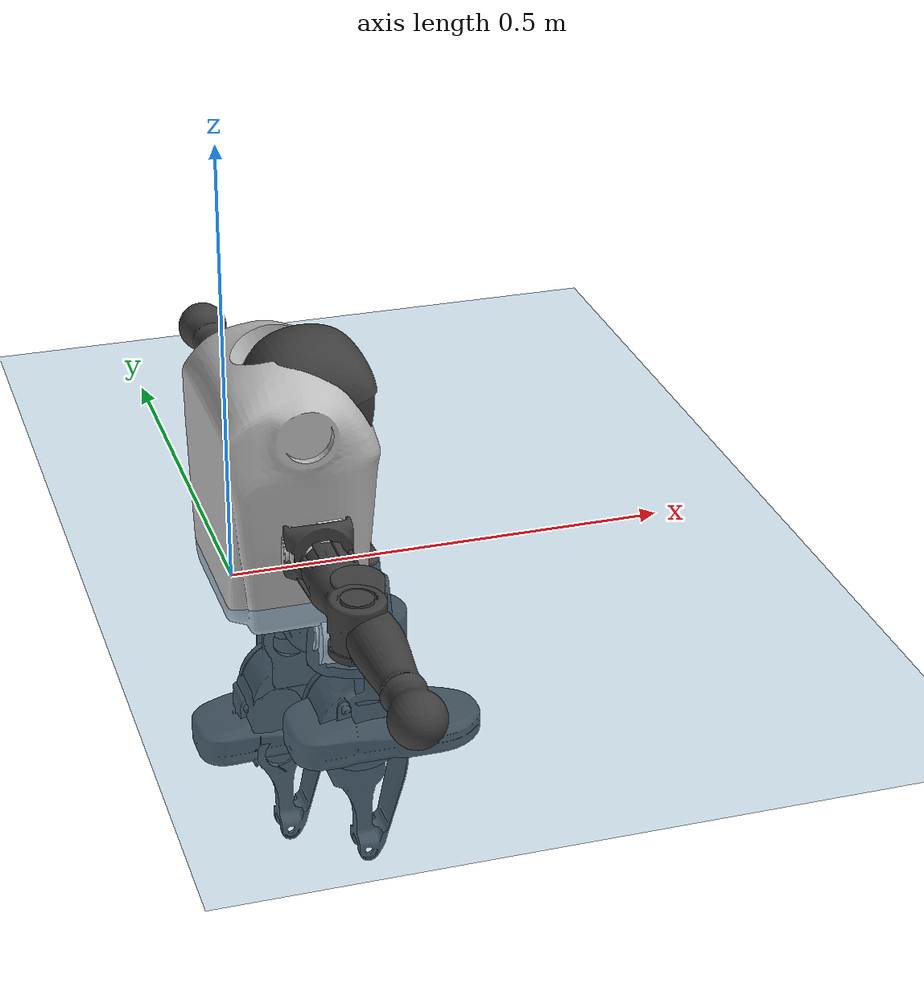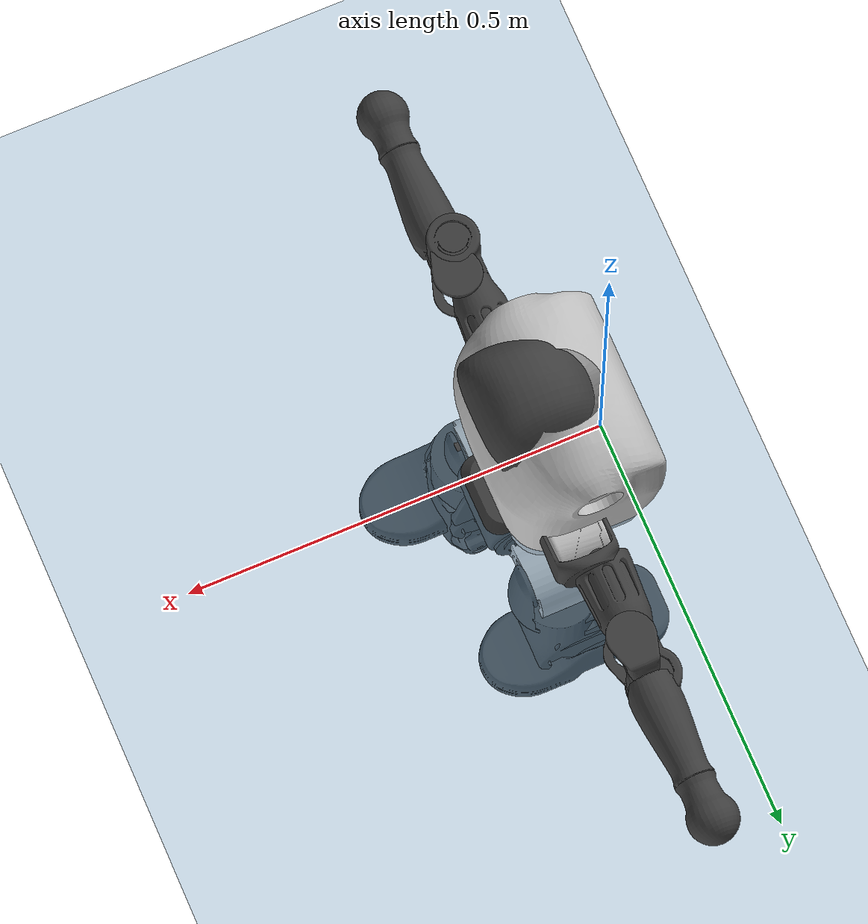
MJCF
<mujoco model="T1">
  <compiler angle="radian" assetdir="assets" balanceinertia="true" inertiafromgeom="false"/>

  <option timestep="0.005" density="1.2" viscosity="2e-05"/>

  <size nkey="1"/>

  <visual>
    <quality shadowsize="8192"/>
    <map shadowclip="0.5"/>
  </visual>

  <default>
    <default class="/">
      <joint armature="0.01" damping="0.01" frictionloss="0.1"/>
      <geom contype="0" conaffinity="0" group="1" solref="-1000 -80"/>
      <site size="0.01 0.005 0.005" group="5"/>
      <general forcelimited="true" biastype="affine" gainprm="25" biasprm="0 -25 -0.6"/>
      <default class="t1">
        <geom rgba="0.25 0.25 0.25 1"/>
        <default class="visual">
          <geom type="mesh" group="2"/>
        </default>
        <default class="collision">
          <geom group="3"/>
        </default>
        <default class="foot">
          <geom size="0.1115 0.05 0.015" type="box" condim="6" group="4" priority="1" solimp="0.015 1 0.015"/>
        </default>
        <default class="reward_collision_sphere">
          <geom group="5" rgba="1 0 0 1"/>
        </default>
      </default>
    </default>
  </default>

  <asset>
    <texture type="skybox" colorspace="auto" name="//unnamed_texture_0" builtin="gradient" rgb1="0.95 0.95 0.95" rgb2="0.95 0.95 0.95" width="100" height="600"/>
    <texture type="2d" colorspace="auto" name="texplane" builtin="checker" rgb1="0.345 0.575 0.748" rgb2="0.345 0.575 0.748" markrgb="1 1 1" width="512" height="512"/>
    <material name="MatPlane" class="/" texture="texplane" texuniform="true" texrepeat="2 2" specular="0.9"/>
    <mesh name="Trunk" class="/" file="Trunk.stl"/>
    <mesh name="H1" class="/" file="H1.stl"/>
    <mesh name="H2" class="/" file="H2.stl"/>
    <mesh name="AL1" class="/" file="AL1.stl"/>
    <mesh name="AL2" class="/" file="AL2.stl"/>
    <mesh name="AL3" class="/" file="AL3.stl"/>
    <mesh name="left_hand_link" class="/" file="left_hand_link.stl"/>
    <mesh name="AR1" class="/" file="AR1.stl"/>
    <mesh name="AR2" class="/" file="AR2.stl"/>
    <mesh name="AR3" class="/" file="AR3.stl"/>
    <mesh name="right_hand_link" class="/" file="right_hand_link.stl"/>
    <mesh name="Waist" class="/" file="Waist.stl"/>
    <mesh name="Hip_Pitch_Left" class="/" file="Hip_Pitch_Left.stl"/>
    <mesh name="Hip_Roll_Left" class="/" file="Hip_Roll_Left.stl"/>
    <mesh name="Hip_Yaw_Left" class="/" file="Hip_Yaw_Left.stl"/>
    <mesh name="Shank_Left" class="/" file="Shank_Left.stl"/>
    <mesh name="Ankle_Cross_Left" class="/" file="Ankle_Cross_Left.stl"/>
    <mesh name="left_foot_link" class="/" file="left_foot_link.stl"/>
    <mesh name="Hip_Pitch_Right" class="/" file="Hip_Pitch_Right.stl"/>
    <mesh name="Hip_Roll_Right" class="/" file="Hip_Roll_Right.stl"/>
    <mesh name="Hip_Yaw_Right" class="/" file="Hip_Yaw_Right.stl"/>
    <mesh name="Shank_Right" class="/" file="Shank_Right.stl"/>
    <mesh name="Ankle_Cross_Right" class="/" file="Ankle_Cross_Right.stl"/>
    <mesh name="right_foot_link" class="/" file="right_foot_link.stl"/>
  </asset>

  <worldbody>
    <geom name="floor" class="/" size="100 100 0.125" type="plane" group="0" material="MatPlane"/>
    <light name="toplight_shadow" class="/" pos="0 0 5" dir="0.0990148 0.0990148 -0.990148" type="directional" ambient="0.04 0.04 0.04" diffuse="0.55 0.55 0.55" specular="0.12 0.12 0.12"/>
    <light name="toplight_fill" class="/" pos="0 0 5" dir="0.0990148 0.0990148 -0.990148" type="directional" castshadow="false" ambient="0.04 0.04 0.04" diffuse="0.3 0.3 0.3" specular="0.08 0.08 0.08"/>
    <body name="trunk" childclass="t1" pos="0.00864048 0.0146151 -0.0129063" quat="0.999972 -0.00687889 -0.00304471 0.000230726">
      <inertial pos="0.07197 -0.00765542 0.0279679" quat="0.999959 0.00293628 -0.0079736 -0.00319973" mass="5.35181" diaginertia="0.234517 0.0124606 0.000172558"/>
      <joint name="//unnamed_joint_0" type="free" armature="0" damping="0" frictionloss="0"/>
      <geom name="//unnamed_geom_1" class="visual" rgba="0.76 0.76 0.76 1" mesh="Trunk"/>
      <geom name="//unnamed_geom_2" class="collision" size="0.0587431 0.0783241 0.117486" pos="0.0777598 0 0.0414655" type="box"/>
      <geom name="//unnamed_geom_3" class="reward_collision_sphere" size="0.0900727" pos="0.0777598 0 0.0345545"/>
      <geom name="//unnamed_geom_4" class="reward_collision_sphere" size="0.0117486" pos="0.0777598 0.0601954 0"/>
      <geom name="//unnamed_geom_5" class="reward_collision_sphere" size="0.0117486" pos="0.0777598 -0.0601954 0"/>
      <geom name="//unnamed_geom_6" class="reward_collision_sphere" size="0.0117486" pos="0.0777598 0.0757753 0.0621982"/>
      <geom name="//unnamed_geom_7" class="reward_collision_sphere" size="0.0117486" pos="0.0777598 -0.0757753 0.0621982"/>
      <site name="imu" pos="-0.0645402 0.0352486 -0.0340077" size="0.00783241"/>
      <camera name="track" pos="0 -1.41636 0" quat="0.707107 0.707107 0 0" mode="trackcom"/>
      <camera name="ego_camera" pos="0.158112 0 0.145129" quat="-0.5 -0.5 0.5 0.5"/>
      <body name="H1" pos="0.0659401 -0.0151894 0.0967253" quat="1 0.000160666 0.000266515 3.49517e-05">
        <inertial pos="0.0128683 -0.00996309 0.00682533" quat="0.804087 -0.060573 -0.0303455 0.590638" mass="0.257758" diaginertia="0.00094241 3.83011e-05 8.35347e-07"/>
        <joint name="AAHead_yaw" pos="0 0 0" axis="-0.0157617 -0.0246405 0.999572" range="-1.38733 1.84083" armature="0.0137322" damping="0.0290582" frictionloss="0.00879558"/>
        <geom name="//unnamed_geom_8" class="visual" mesh="H1"/>
        <body name="H2" pos="0.00337183 -0.000458696 0.00991209" quat="1 -0.000344407 0.000153407 -0.000236482">
          <inertial pos="0.003639 0.00235289 0.0344121" quat="0.985413 0.144944 -0.054164 -0.0708398" mass="0.376233" diaginertia="0.00987538 0.000360578 8.03598e-06"/>
          <joint name="Head_pitch" pos="0 0 0" axis="-0.000652414 -0.999701 0.0244309" range="-1.15461 0.274912" armature="0.0148275" damping="0.0108924" frictionloss="0.10516"/>
          <geom name="//unnamed_geom_9" class="visual" mesh="H2"/>
          <geom name="//unnamed_geom_10" class="collision" size="0.0626593" pos="0.01296 0 0.03801"/>
          <geom name="//unnamed_geom_11" class="reward_collision_sphere" size="0.0704917" pos="0.0259199 0 0.0345545"/>
        </body>
      </body>
      <body name="AL1" pos="0.079478 0.0699967 0.0821104" quat="1 -0.0002088 0.000533418 0.000489969">
        <inertial pos="0.0095134 0.0323065 -0.00647249" quat="0.481974 0.567686 -0.482161 0.46147" mass="0.280073" diaginertia="0.00502237 0.000207131 1.21667e-06"/>
        <joint name="Left_Shoulder_Pitch" pos="0 0 0" axis="0.0449972 0.998491 -0.0314648" stiffness="0.0123072" range="-3.32197 1.04112" armature="0.00830141" damping="0" frictionloss="0.0981775"/>
        <geom name="//unnamed_geom_12" class="visual" rgba="0.76 0.76 0.76 1" mesh="AL1"/>
        <body name="AL2" pos="0.000258017 0.0330948 0.00958904" quat="1 0.000209305 0.000515098 -0.000483683">
          <inertial pos="0.00350758 0.0376202 0.00307475" quat="0.491111 0.512973 -0.490672 0.504886" mass="0.0812091" diaginertia="0.00162252 6.19682e-05 1.00616e-06"/>
          <joint name="Left_Shoulder_Roll" pos="0 0 0" axis="-0.999688 0.0151284 -0.0198838" stiffness="0.0228236" range="-1.38791 1.516" armature="0.00702833" damping="0.023624" frictionloss="0.0951055"/>
          <geom name="//unnamed_geom_13" class="visual" mesh="AL2"/>
          <body name="AL3" pos="-0.0139687 0.0440799 -0.0101156" quat="0.999979 0.00132206 -0.00427505 0.0047796">
            <inertial pos="0.0163649 0.0572101 0.000122064" quat="0.709875 0.703864 0.0161159 -0.0198437" mass="0.412074" diaginertia="0.0410716 0.00272103 2.9228e-06"/>
            <joint name="Left_Elbow_Pitch" pos="0 0 0" axis="0.00274461 -0.999847 -0.0172678" stiffness="0.0220679" range="-2.24775 2.26072" armature="0.0117607" damping="0.0122248" frictionloss="0.0998726"/>
            <geom name="//unnamed_geom_14" class="visual" mesh="AL3"/>
            <geom name="//unnamed_geom_15" class="collision" size="0.0234972 0.0587431" pos="0 0.035409 0" quat="0.707105 0.707108 0 0" type="cylinder"/>
            <geom name="//unnamed_geom_16" class="reward_collision_sphere" size="0.0281967"/>
            <body name="left_hand_link" pos="0.0103282 0.104065 0.0175492" quat="0.999971 0.0033751 -0.00291041 0.00625012">
              <inertial pos="0.00163177 0.0895319 -0.0119795" quat="0.715072 0.697174 0.0501759 -0.0101198" mass="0.203587" diaginertia="0.0294456 0.00179578 1.50108e-06"/>
              <joint name="Left_Elbow_Yaw" pos="0 0 0" axis="-0.0222215 -0.00922298 0.999711" range="-2.34234 0.168461" armature="0.00940179" damping="0" frictionloss="0.0841018"/>
              <geom name="//unnamed_geom_17" class="visual" mesh="left_hand_link"/>
              <geom name="//unnamed_geom_18" class="collision" size="0.0234972 0.0685336" pos="0 0.0920635 0" quat="0.707105 0.707108 0 0" type="cylinder"/>
              <geom name="//unnamed_geom_19" class="reward_collision_sphere" size="0.039162"/>
              <geom name="//unnamed_geom_20" class="reward_collision_sphere" size="0.0274134" pos="0 0.0778999 0"/>
              <geom name="//unnamed_geom_21" class="reward_collision_sphere" size="0.0274134" pos="0 0.152259 0"/>
            </body>
          </body>
        </body>
      </body>
      <body name="AR1" pos="0.063835 -0.0587562 0.0857212" quat="0.999996 0.00148541 0.000977993 -0.00216924">
        <inertial pos="-0.00263313 -0.0174492 -0.0162785" quat="0.497845 0.485595 -0.525024 0.490609" mass="0.286121" diaginertia="0.00563189 0.000313799 1.63893e-06"/>
        <joint name="Right_Shoulder_Pitch" pos="0 0 0" axis="0.0639053 -0.996901 0.0458667" stiffness="0.0063908" range="-1.49218 3.37015" armature="0.00465368" damping="0" frictionloss="0.0258856"/>
        <geom name="//unnamed_geom_22" class="visual" rgba="0.76 0.76 0.76 1" mesh="AR1"/>
        <body name="AR2" pos="0.00102453 -0.0227391 0.0021583" quat="0.999985 0.00444062 0.00280287 0.00155673">
          <inertial pos="0.0159158 -0.0282931 0.0111957" quat="0.534196 0.51502 -0.487687 0.459946" mass="0.0555093" diaginertia="0.00112368 4.94454e-05 8.2584e-07"/>
          <joint name="Right_Shoulder_Roll" pos="0 0 0" axis="-0.998743 -0.0454389 -0.0211775" stiffness="0.0371876" range="-1.76929 1.62161" armature="0.013342" damping="0.0112933" frictionloss="0.0970223"/>
          <geom name="//unnamed_geom_23" class="visual" mesh="AR2"/>
          <body name="AR3" pos="0.00453813 -0.0282946 -0.0153911" quat="0.999976 0.00508172 0.00472072 -0.000114327">
            <inertial pos="-0.0176036 -0.0638549 -0.0148911" quat="0.71134 0.702843 -0.00247265 0.000934717" mass="0.569053" diaginertia="0.0651131 0.00263962 3.89606e-06"/>
            <joint name="Right_Elbow_Pitch" pos="0 0 0" axis="-0.000225211 0.999999 0.00105832" stiffness="0.049121" range="-2.1547 2.2988" armature="0.00811275" damping="0.0167106" frictionloss="0.00886712"/>
            <geom name="//unnamed_geom_24" class="visual" mesh="AR3"/>
            <geom name="//unnamed_geom_25" class="collision" size="0.0234972 0.0587431" pos="0 -0.035409 0" quat="0.707105 0.707108 0 0" type="cylinder"/>
            <geom name="//unnamed_geom_26" class="reward_collision_sphere" size="0.0281967"/>
            <body name="right_hand_link" pos="0.0114024 -0.106906 -0.00498421" quat="1 0.000601229 0.000325178 2.14993e-05">
              <inertial pos="0.00397733 -0.0846477 0.00631751" quat="0.709352 0.704786 0.00519236 0.00827543" mass="0.145619" diaginertia="0.0236889 0.00113816 9.37354e-07"/>
              <joint name="Right_Elbow_Yaw" pos="0 0 0" axis="-0.0126169 -0.0841631 0.996372" stiffness="0.00771862" range="0.146402 2.42652" armature="0.0119728" damping="0.0142671" frictionloss="0.0364543"/>
              <geom name="//unnamed_geom_27" class="visual" mesh="right_hand_link"/>
              <geom name="//unnamed_geom_28" class="collision" size="0.0234972 0.0685336" pos="0 -0.0920635 0" quat="0.707105 0.707108 0 0" type="cylinder"/>
              <geom name="//unnamed_geom_29" class="reward_collision_sphere" size="0.039162"/>
              <geom name="//unnamed_geom_30" class="reward_collision_sphere" size="0.0274134" pos="0 -0.0778999 0"/>
              <geom name="//unnamed_geom_31" class="reward_collision_sphere" size="0.0274134" pos="0 -0.152259 0"/>
            </body>
          </body>
        </body>
      </body>
      <body name="Waist" pos="0.0987624 0.00925168 -0.0423936" quat="0.999966 -0.00354754 0.00522885 0.00522178">
        <inertial pos="0.0187146 -0.0129284 0.0151156" quat="0.982142 0.0116214 -0.170617 -0.0784367" mass="1.6112" diaginertia="0.0210036 0.00112366 2.7517e-05"/>
        <joint name="Waist" pos="0 0 0" axis="0.0571593 0.00414915 0.998356" range="-1.56261 1.43932" armature="0.00746645" damping="0" frictionloss="0.0736526"/>
        <geom name="//unnamed_geom_32" class="visual" mesh="Waist"/>
        <body name="Hip_Pitch_Left" pos="-0.00110114 0.0881698 -0.0145263" quat="0.999995 0.00148505 -0.00284529 -0.000378778">
          <inertial pos="-0.0149312 -0.00794992 -0.00711486" quat="0.977439 0.202134 -0.0510447 0.0339037" mass="0.403705" diaginertia="0.0067834 0.000186685 5.80403e-06"/>
          <joint name="Left_Hip_Pitch" pos="0 0 0" axis="-0.0524115 0.997777 -0.0411663" range="-1.97675 1.68635" armature="0.00363975" damping="0.00707002" frictionloss="0.0670502"/>
          <geom name="//unnamed_geom_33" class="visual" rgba="0.76 0.76 0.76 1" mesh="Hip_Pitch_Left"/>
          <body name="Hip_Roll_Left" pos="0.00636794 0.00956804 0.00307405" quat="1 0.000150154 -0.000138665 -0.000339359">
            <inertial pos="0.00256796 0.0170774 -0.00954296" quat="0.707255 -0.00717983 -0.00565113 0.706899" mass="0.216353" diaginertia="0.00876181 0.000377921 2.29441e-06"/>
            <joint name="Left_Hip_Roll" pos="0 0 0" axis="-0.998855 0.0458136 0.0137834" range="-1.45331 -0.00367179" armature="0.00550643" damping="0.0889967" frictionloss="0.0264625"/>
            <geom name="//unnamed_geom_34" class="visual" mesh="Hip_Roll_Left"/>
            <geom name="//unnamed_geom_35" class="reward_collision_sphere" size="0.0430782"/>
            <body name="Hip_Yaw_Left" pos="-0.00510859 0.00986678 -0.0372704" quat="0.999985 -0.00447441 0.00289085 0.00144948">
              <inertial pos="-0.0150283 -0.00706755 -0.0182903" quat="0.694012 -0.0709158 -0.0199874 0.716183" mass="0.971069" diaginertia="0.108516 0.00546234 1.53242e-05"/>
              <joint name="Left_Hip_Yaw" pos="0 0 0" axis="-0.000327076 0.00148509 -0.999999" stiffness="0.0755088" range="-0.6625 1.09709" armature="0.00857166" damping="0.00584629" frictionloss="0.074591"/>
              <geom name="//unnamed_geom_36" class="visual" mesh="Hip_Yaw_Left"/>
              <geom name="//unnamed_geom_37" class="collision" size="0.039162 0.0626593" type="cylinder"/>
              <body name="Shank_Left" pos="-0.0216517 -0.00132409 -0.0427001" quat="1 -0.00014955 0.000159542 6.13986e-05">
                <inertial pos="0.00546364 0.00102028 -0.0471977" quat="0.999094 -0.0244731 -0.0299649 0.0177569" mass="0.785942" diaginertia="0.0996356 0.00689155 9.90603e-06"/>
                <joint name="Left_Knee_Pitch" pos="0 0 0" axis="0.0355495 0.998963 0.0284302" stiffness="0.00318379" range="-0.0113889 2.57299" armature="0.00241716" damping="0.0706899" frictionloss="0.0899039"/>
                <geom name="//unnamed_geom_38" class="visual" mesh="Shank_Left"/>
                <geom name="//unnamed_geom_39" class="collision" size="0.039162 0.0587431" pos="0 0 -0.0414655" type="cylinder"/>
                <geom name="//unnamed_geom_40" class="reward_collision_sphere" size="0.0509107"/>
                <body name="Ankle_Cross_Left" pos="-0.0135004 -0.0017526 -0.11474" quat="0.999986 -0.00294063 -0.00398321 0.0017964">
                  <inertial pos="0.012975 -0.00537021 -0.0134526" quat="0.446912 0.55854 0.54697 0.434887" mass="0.032643" diaginertia="0.000118783 4.54415e-06 4.90909e-08"/>
                  <joint name="Left_Ankle_Pitch" pos="0 0 0" axis="0.000980935 0.999998 -0.00173819" stiffness="0.0690931" range="-0.868065 0.361608" armature="0.000659264" damping="0" frictionloss="0.0669085"/>
                  <geom name="//unnamed_geom_41" class="visual" mesh="Ankle_Cross_Left"/>
                  <body name="left_foot_link" pos="0.00777787 0.0122546 -0.0165884" quat="0.99996 -0.000426492 -0.00810348 -0.00375382">
                    <inertial pos="0.0128838 0.0104957 0.00156428" quat="0.0367601 0.639488 -0.0627879 0.765351" mass="0.252103" diaginertia="0.0087644 0.000397865 7.72049e-06"/>
                    <joint name="Left_Ankle_Roll" pos="0 0 0" axis="-0.996168 0.0296827 -0.0822752" stiffness="0.00138882" range="-0.593485 0.204858" armature="0.00792706" damping="0.0704399" frictionloss="0.103178"/>
                    <geom name="//unnamed_geom_42" class="visual" mesh="left_foot_link"/>
                    <geom name="left_foot" class="foot" size="0.0533568 0.0575835 0.0120491" pos="0.01296 0 -0.00518318"/>
                    <geom name="//unnamed_geom_44" class="reward_collision_sphere" size="0.0407285" pos="0.01296 0 -0.00518318"/>
                    <geom name="//unnamed_geom_45" class="reward_collision_sphere" size="0.0234972" pos="0.12312 -0.0162882 -0.00518318"/>
                    <geom name="//unnamed_geom_46" class="reward_collision_sphere" size="0.0234972" pos="-0.0907198 -0.0162882 -0.00518318"/>
                    <site name="left_foot" class="foot" pos="0.01296 0 -0.00518318" size="0.00783241"/>
                  </body>
                </body>
              </body>
            </body>
          </body>
        </body>
        <body name="Hip_Pitch_Right" pos="0.00615236 -0.0642168 0.0172719" quat="0.999998 -0.00138238 -0.000757108 -0.00122098">
          <inertial pos="0.0170307 0.0203517 0.00168524" quat="0.968441 -0.245909 0.0238677 -0.0328923" mass="0.480554" diaginertia="0.00550353 0.000217247 6.13353e-06"/>
          <joint name="Right_Hip_Pitch" pos="0 0 0" axis="-0.00255876 -0.999468 0.0325283" stiffness="0.0410192" range="-1.44059 2.03534" armature="0.0111961" damping="0.0834674" frictionloss="0.0439846"/>
          <geom name="//unnamed_geom_47" class="visual" rgba="0.76 0.76 0.76 1" mesh="Hip_Pitch_Right"/>
          <body name="Hip_Roll_Right" pos="0.0117508 -0.00103959 0.0102758" quat="0.999984 0.00555698 -0.000175969 0.000484864">
            <inertial pos="0.0138555 -0.00810206 -0.0309245" quat="0.713461 0.0427039 -0.0582732 0.69696" mass="0.174297" diaginertia="0.0053738 0.000312686 2.77582e-06"/>
            <joint name="Right_Hip_Roll" pos="0 0 0" axis="-0.999443 0.0326315 0.00698652" stiffness="0.00669816" range="-0.0976143 1.5048" armature="0.00954269" damping="0" frictionloss="0.0303482"/>
            <geom name="//unnamed_geom_48" class="visual" mesh="Hip_Roll_Right"/>
            <geom name="//unnamed_geom_49" class="reward_collision_sphere" size="0.0430782"/>
            <body name="Hip_Yaw_Right" pos="0.0169588 0.00212713 -0.0201477" quat="0.999999 0.000273948 0.00113174 -0.00014678">
              <inertial pos="-0.00450797 0.00648383 -0.0421502" quat="0.714082 -0.0410693 -0.0279972 0.698295" mass="1.13363" diaginertia="0.0779514 0.00513222 1.04925e-05"/>
              <joint name="Right_Hip_Yaw" pos="0 0 0" axis="0.00720013 0.0178673 -0.999814" stiffness="0.0317518" range="-0.978929 1.0114" armature="0.00585081" damping="0" frictionloss="0.109503"/>
              <geom name="//unnamed_geom_50" class="visual" mesh="Hip_Yaw_Right"/>
              <geom name="//unnamed_geom_51" class="collision" size="0.039162 0.0626593" type="cylinder"/>
              <body name="Shank_Right" pos="-0.00359115 0.00103649 -0.0337528" quat="0.999992 0.0040503 -5.74688e-05 -0.000317732">
                <inertial pos="-0.00963368 0.0140299 -0.0418777" quat="0.997132 0.0584068 -0.00357354 -0.048002" mass="0.725762" diaginertia="0.146634 0.00639452 1.18993e-05"/>
                <joint name="Right_Knee_Pitch" pos="0 0 0" axis="0.0122677 -0.999924 -0.000906569" range="-2.0307 -0.0501455" armature="0.0103664" damping="0.00920525" frictionloss="0.0969513"/>
                <geom name="//unnamed_geom_52" class="visual" mesh="Shank_Right"/>
                <geom name="//unnamed_geom_53" class="collision" size="0.039162 0.0587431" pos="0 0 -0.0414655" type="cylinder"/>
                <geom name="//unnamed_geom_54" class="reward_collision_sphere" size="0.0509107"/>
                <body name="Ankle_Cross_Right" pos="0.00607345 -0.00624746 -0.0880479" quat="1 -0.000131166 0.000187063 -7.8471e-05">
                  <inertial pos="-0.00366767 -0.0102369 -0.00352807" quat="0.445456 0.550682 0.549006 0.443747" mass="0.0386998" diaginertia="8.28164e-05 5.0618e-06 4.36559e-08"/>
                  <joint name="Right_Ankle_Pitch" pos="0 0 0" axis="-0.0751459 -0.997168 0.00287673" stiffness="0.0679709" range="-0.57823 1.13159" armature="0.00778359" damping="0" frictionloss="0.0749685"/>
                  <geom name="//unnamed_geom_55" class="visual" mesh="Ankle_Cross_Right"/>
                  <body name="right_foot_link" pos="0.00083189 -0.0144254 -0.00777129" quat="1 0.000584551 0.000384511 0.00034312">
                    <inertial pos="-0.000808503 -0.0144442 0.0141214" quat="0.0435948 0.636615 -0.0534209 0.768093" mass="0.450502" diaginertia="0.0114304 0.000514482 1.59271e-05"/>
                    <joint name="Right_Ankle_Roll" pos="0 0 0" axis="-0.99917 -0.0253277 0.0319021" range="-0.164173 0.118576" armature="0.014437" damping="0.093526" frictionloss="0.0292479"/>
                    <geom name="//unnamed_geom_56" class="visual" mesh="right_foot_link"/>
                    <geom name="right_foot" class="foot" size="0.0787806 0.0596613 0.00533325" pos="0.01296 0 -0.00518318"/>
                    <geom name="//unnamed_geom_58" class="reward_collision_sphere" size="0.0313296"/>
                    <geom name="//unnamed_geom_59" class="reward_collision_sphere" size="0.0234972" pos="0.01296 0 -0.00518318"/>
                    <geom name="//unnamed_geom_60" class="reward_collision_sphere" size="0.0234972" pos="0.12312 0.0162882 -0.00518318"/>
                    <geom name="//unnamed_geom_61" class="reward_collision_sphere" size="0.0234972" pos="-0.0907198 0.0162882 -0.00518318"/>
                    <site name="right_foot" class="foot" pos="0.01296 0 -0.00518318" size="0.00783241"/>
                  </body>
                </body>
              </body>
            </body>
          </body>
        </body>
      </body>
    </body>
  </worldbody>

  <contact>
    <pair class="/" geom1="floor" geom2="left_foot" name="//unnamed_contact_0"/>
    <pair class="/" geom1="floor" geom2="right_foot" name="//unnamed_contact_1"/>
  </contact>

  <actuator>
    <general name="AAHead_yaw" class="/" joint="AAHead_yaw" forcerange="-5.68954 5.68954" gainprm="24.2731" biasprm="0 -24.2731 -0.346521"/>
    <general name="Head_pitch" class="/" joint="Head_pitch" forcerange="-5.02039 5.02039" gainprm="24.2731" biasprm="0 -24.2731 -0.346521"/>
    <general name="Left_Shoulder_Pitch" class="/" joint="Left_Shoulder_Pitch" forcerange="-23.447 23.447" gainprm="24.2731" biasprm="0 -24.2731 -0.346521"/>
    <general name="Left_Shoulder_Roll" class="/" joint="Left_Shoulder_Roll" forcerange="-22.0032 22.0032" gainprm="24.2731" biasprm="0 -24.2731 -0.346521"/>
    <general name="Left_Elbow_Pitch" class="/" joint="Left_Elbow_Pitch" forcerange="-7.79519 7.79519" gainprm="24.2731" biasprm="0 -24.2731 -0.346521"/>
    <general name="Left_Elbow_Yaw" class="/" joint="Left_Elbow_Yaw" forcerange="-14.956 14.956" gainprm="24.2731" biasprm="0 -24.2731 -0.346521"/>
    <general name="Right_Shoulder_Pitch" class="/" joint="Right_Shoulder_Pitch" forcerange="-17.1934 17.1934" gainprm="24.2731" biasprm="0 -24.2731 -0.346521"/>
    <general name="Right_Shoulder_Roll" class="/" joint="Right_Shoulder_Roll" forcerange="-7.46823 7.46823" gainprm="24.2731" biasprm="0 -24.2731 -0.346521"/>
    <general name="Right_Elbow_Pitch" class="/" joint="Right_Elbow_Pitch" forcerange="-11.1894 11.1894" gainprm="24.2731" biasprm="0 -24.2731 -0.346521"/>
    <general name="Right_Elbow_Yaw" class="/" joint="Right_Elbow_Yaw" forcerange="-17.6094 17.6094" gainprm="24.2731" biasprm="0 -24.2731 -0.346521"/>
    <general name="Waist" class="/" joint="Waist" forcerange="-35.8743 35.8743" gainprm="24.2731" biasprm="0 -24.2731 -0.346521"/>
    <general name="Left_Hip_Pitch" class="/" joint="Left_Hip_Pitch" forcerange="-29.5121 29.5121" gainprm="24.2731" biasprm="0 -24.2731 -0.346521"/>
    <general name="Left_Hip_Roll" class="/" joint="Left_Hip_Roll" forcerange="-16.0549 16.0549" gainprm="24.2731" biasprm="0 -24.2731 -0.346521"/>
    <general name="Left_Hip_Yaw" class="/" joint="Left_Hip_Yaw" forcerange="-33.0793 33.0793" gainprm="24.2731" biasprm="0 -24.2731 -0.346521"/>
    <general name="Left_Knee_Pitch" class="/" joint="Left_Knee_Pitch" forcerange="-49.496 49.496" gainprm="24.2731" biasprm="0 -24.2731 -0.346521"/>
    <general name="Left_Ankle_Pitch" class="/" joint="Left_Ankle_Pitch" forcerange="-16.0309 16.0309" gainprm="24.2731" biasprm="0 -24.2731 -0.346521"/>
    <general name="Left_Ankle_Roll" class="/" joint="Left_Ankle_Roll" forcerange="-8.33049 8.33049" gainprm="24.2731" biasprm="0 -24.2731 -0.346521"/>
    <general name="Right_Hip_Pitch" class="/" joint="Right_Hip_Pitch" forcerange="-15.2936 15.2936" gainprm="24.2731" biasprm="0 -24.2731 -0.346521"/>
    <general name="Right_Hip_Roll" class="/" joint="Right_Hip_Roll" forcerange="-8.26566 8.26566" gainprm="24.2731" biasprm="0 -24.2731 -0.346521"/>
    <general name="Right_Hip_Yaw" class="/" joint="Right_Hip_Yaw" forcerange="-24.5768 24.5768" gainprm="24.2731" biasprm="0 -24.2731 -0.346521"/>
    <general name="Right_Knee_Pitch" class="/" joint="Right_Knee_Pitch" forcerange="-28.7393 28.7393" gainprm="24.2731" biasprm="0 -24.2731 -0.346521"/>
    <general name="Right_Ankle_Pitch" class="/" joint="Right_Ankle_Pitch" forcerange="-25.6647 25.6647" gainprm="24.2731" biasprm="0 -24.2731 -0.346521"/>
    <general name="Right_Ankle_Roll" class="/" joint="Right_Ankle_Roll" forcerange="-5.71132 5.71132" gainprm="24.2731" biasprm="0 -24.2731 -0.346521"/>
  </actuator>

  <sensor>
    <gyro site="imu" name="imu_angular_velocity"/>
    <velocimeter site="imu" name="imu_linear_velocity"/>
    <framelinvel objtype="site" objname="left_foot" name="left_foot_global_linear_velocity"/>
    <framelinvel objtype="site" objname="right_foot" name="right_foot_global_linear_velocity"/>
  </sensor>

  <keyframe>
    <key name="home" qpos="0 0 0.6385 1 0 0 0 0 0 0 1.4 0 -0.4 0 -1.4 0 0.4 0 -0.4 0 0 0.8 -0.4 0 0.4 0 0 -0.8 0.4 0"/>
  </keyframe>
</mujoco>
